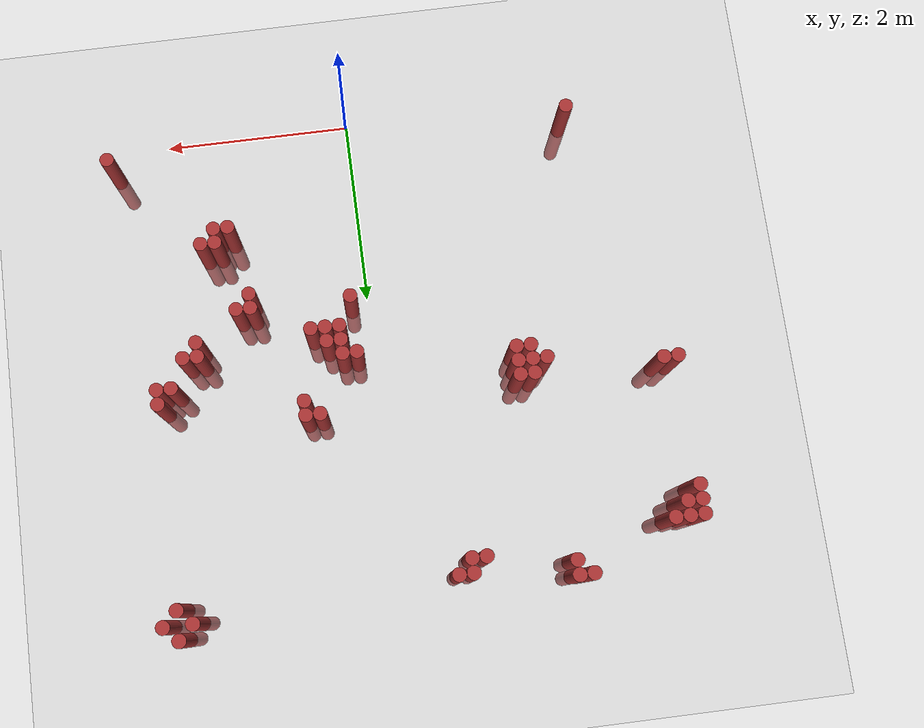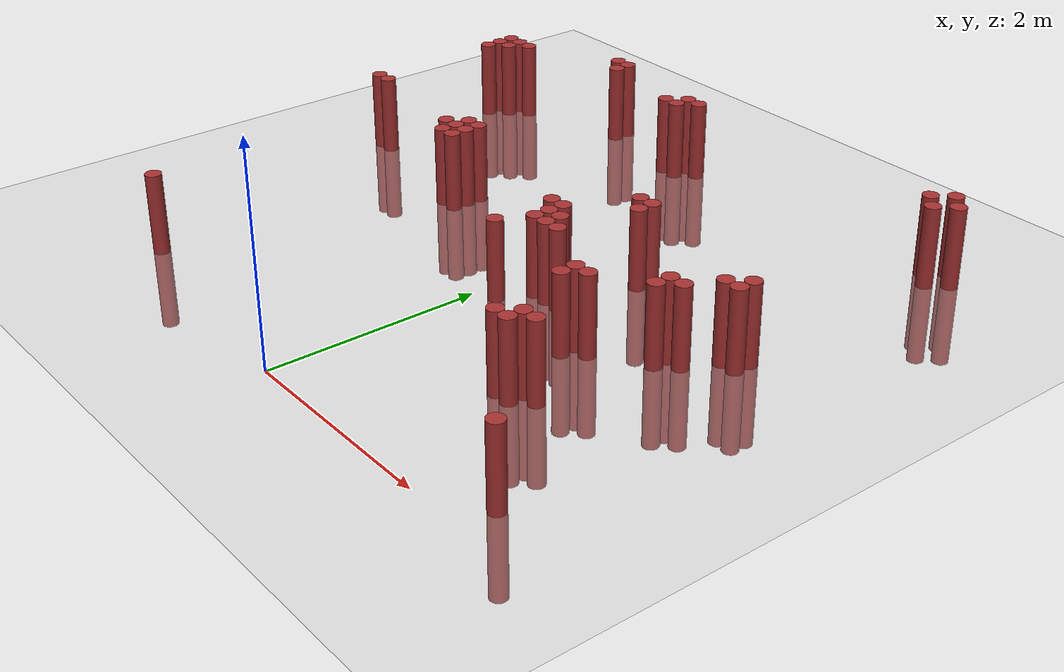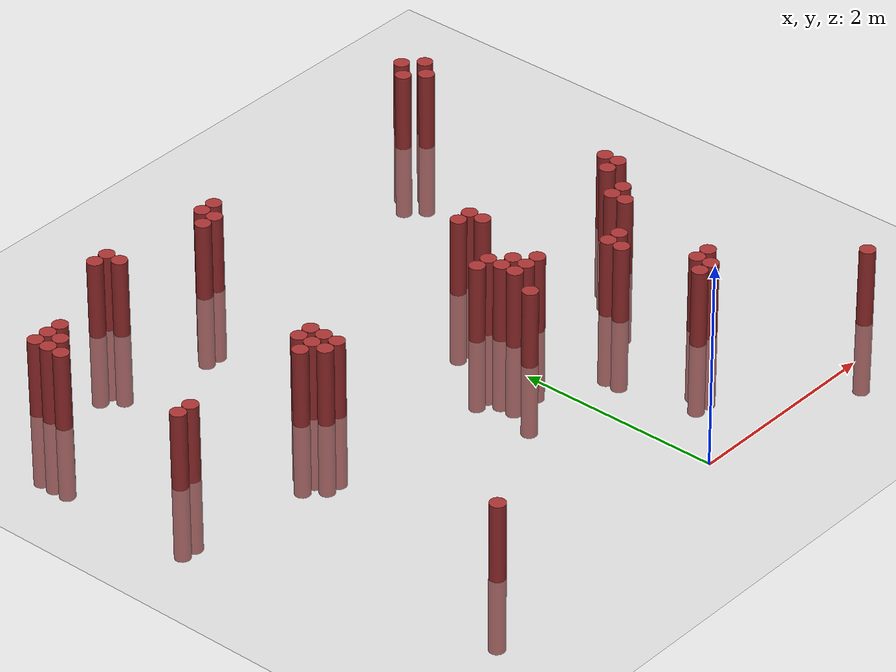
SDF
<sdf version="1.6">
 <world name="default">
  <model name="ground_plane">
   <static>1</static>
   <link name="link">
    <collision name="collision">
     <geometry><plane><normal>0 0 1</normal><size>100 100</size></plane></geometry>
     <surface><friction><ode><mu>100</mu><mu2>50</mu2></ode></friction></surface>
    </collision>
    <visual name="visual">
     <cast_shadows>0</cast_shadows>
     <geometry><plane><normal>0 0 1</normal><size>100 100</size></plane></geometry>
     <material>
      <script><uri>file://media/materials/scripts/gazebo.material</uri><name>Gazebo/Grey</name></script>
     </material>
    </visual>
   </link>
  </model>
  <model name="unit_cylinder_292">
   <static>1</static>
   <pose>-3.125000 3.175000 0.000000 0.000000 0.000000 0.000000</pose>
   <link name="link">
    <inertial>
     <mass>1</mass>
     <inertia><ixx>0.145833</ixx><ixy>0</ixy><ixz>0</ixz><iyy>0.145833</iyy><iyz>0</iyz><izz>0.125</izz></inertia>
    </inertial>
    <collision name="collision">
     <geometry><cylinder><radius>0.075000</radius><length>1.5</length></cylinder></geometry>
    </collision>
    <visual name="visual">
     <geometry><cylinder><radius>0.075000</radius><length>1.5</length></cylinder></geometry>
     <material>
      <ambient>0.648000 0.192000 0.192000 1</ambient>
      <diffuse>0.648000 0.192000 0.192000 1</diffuse>
     </material>
     <material>
      <script><name>Gazebo/Grey</name><uri>file://media/materials/scripts/gazebo.material</uri></script>
     </material>
    </visual>
   </link>
  </model>
  <model name="unit_cylinder_293">
   <static>1</static>
   <pose>-3.125000 4.525000 0.000000 0.000000 0.000000 0.000000</pose>
   <link name="link">
    <inertial>
     <mass>1</mass>
     <inertia><ixx>0.145833</ixx><ixy>0</ixy><ixz>0</ixz><iyy>0.145833</iyy><iyz>0</iyz><izz>0.125</izz></inertia>
    </inertial>
    <collision name="collision">
     <geometry><cylinder><radius>0.075000</radius><length>1.5</length></cylinder></geometry>
    </collision>
    <visual name="visual">
     <geometry><cylinder><radius>0.075000</radius><length>1.5</length></cylinder></geometry>
     <material>
      <ambient>0.648000 0.192000 0.192000 1</ambient>
      <diffuse>0.648000 0.192000 0.192000 1</diffuse>
     </material>
     <material>
      <script><name>Gazebo/Grey</name><uri>file://media/materials/scripts/gazebo.material</uri></script>
     </material>
    </visual>
   </link>
  </model>
  <model name="unit_cylinder_294">
   <static>1</static>
   <pose>-3.125000 4.675000 0.000000 0.000000 0.000000 0.000000</pose>
   <link name="link">
    <inertial>
     <mass>1</mass>
     <inertia><ixx>0.145833</ixx><ixy>0</ixy><ixz>0</ixz><iyy>0.145833</iyy><iyz>0</iyz><izz>0.125</izz></inertia>
    </inertial>
    <collision name="collision">
     <geometry><cylinder><radius>0.075000</radius><length>1.5</length></cylinder></geometry>
    </collision>
    <visual name="visual">
     <geometry><cylinder><radius>0.075000</radius><length>1.5</length></cylinder></geometry>
     <material>
      <ambient>0.648000 0.192000 0.192000 1</ambient>
      <diffuse>0.648000 0.192000 0.192000 1</diffuse>
     </material>
     <material>
      <script><name>Gazebo/Grey</name><uri>file://media/materials/scripts/gazebo.material</uri></script>
     </material>
    </visual>
   </link>
  </model>
  <model name="unit_cylinder_295">
   <static>1</static>
   <pose>-3.125000 4.825000 0.000000 0.000000 0.000000 0.000000</pose>
   <link name="link">
    <inertial>
     <mass>1</mass>
     <inertia><ixx>0.145833</ixx><ixy>0</ixy><ixz>0</ixz><iyy>0.145833</iyy><iyz>0</iyz><izz>0.125</izz></inertia>
    </inertial>
    <collision name="collision">
     <geometry><cylinder><radius>0.075000</radius><length>1.5</length></cylinder></geometry>
    </collision>
    <visual name="visual">
     <geometry><cylinder><radius>0.075000</radius><length>1.5</length></cylinder></geometry>
     <material>
      <ambient>0.648000 0.192000 0.192000 1</ambient>
      <diffuse>0.648000 0.192000 0.192000 1</diffuse>
     </material>
     <material>
      <script><name>Gazebo/Grey</name><uri>file://media/materials/scripts/gazebo.material</uri></script>
     </material>
    </visual>
   </link>
  </model>
  <model name="unit_cylinder_298">
   <static>1</static>
   <pose>-2.975000 3.175000 0.000000 0.000000 0.000000 0.000000</pose>
   <link name="link">
    <inertial>
     <mass>1</mass>
     <inertia><ixx>0.145833</ixx><ixy>0</ixy><ixz>0</ixz><iyy>0.145833</iyy><iyz>0</iyz><izz>0.125</izz></inertia>
    </inertial>
    <collision name="collision">
     <geometry><cylinder><radius>0.075000</radius><length>1.5</length></cylinder></geometry>
    </collision>
    <visual name="visual">
     <geometry><cylinder><radius>0.075000</radius><length>1.5</length></cylinder></geometry>
     <material>
      <ambient>0.648000 0.192000 0.192000 1</ambient>
      <diffuse>0.648000 0.192000 0.192000 1</diffuse>
     </material>
     <material>
      <script><name>Gazebo/Grey</name><uri>file://media/materials/scripts/gazebo.material</uri></script>
     </material>
    </visual>
   </link>
  </model>
  <model name="unit_cylinder_299">
   <static>1</static>
   <pose>-2.975000 4.675000 0.000000 0.000000 0.000000 0.000000</pose>
   <link name="link">
    <inertial>
     <mass>1</mass>
     <inertia><ixx>0.145833</ixx><ixy>0</ixy><ixz>0</ixz><iyy>0.145833</iyy><iyz>0</iyz><izz>0.125</izz></inertia>
    </inertial>
    <collision name="collision">
     <geometry><cylinder><radius>0.075000</radius><length>1.5</length></cylinder></geometry>
    </collision>
    <visual name="visual">
     <geometry><cylinder><radius>0.075000</radius><length>1.5</length></cylinder></geometry>
     <material>
      <ambient>0.648000 0.192000 0.192000 1</ambient>
      <diffuse>0.648000 0.192000 0.192000 1</diffuse>
     </material>
     <material>
      <script><name>Gazebo/Grey</name><uri>file://media/materials/scripts/gazebo.material</uri></script>
     </material>
    </visual>
   </link>
  </model>
  <model name="unit_cylinder_300">
   <static>1</static>
   <pose>-2.975000 4.825000 0.000000 0.000000 0.000000 0.000000</pose>
   <link name="link">
    <inertial>
     <mass>1</mass>
     <inertia><ixx>0.145833</ixx><ixy>0</ixy><ixz>0</ixz><iyy>0.145833</iyy><iyz>0</iyz><izz>0.125</izz></inertia>
    </inertial>
    <collision name="collision">
     <geometry><cylinder><radius>0.075000</radius><length>1.5</length></cylinder></geometry>
    </collision>
    <visual name="visual">
     <geometry><cylinder><radius>0.075000</radius><length>1.5</length></cylinder></geometry>
     <material>
      <ambient>0.648000 0.192000 0.192000 1</ambient>
      <diffuse>0.648000 0.192000 0.192000 1</diffuse>
     </material>
     <material>
      <script><name>Gazebo/Grey</name><uri>file://media/materials/scripts/gazebo.material</uri></script>
     </material>
    </visual>
   </link>
  </model>
  <model name="unit_cylinder_303">
   <static>1</static>
   <pose>-2.825000 4.825000 0.000000 0.000000 0.000000 0.000000</pose>
   <link name="link">
    <inertial>
     <mass>1</mass>
     <inertia><ixx>0.145833</ixx><ixy>0</ixy><ixz>0</ixz><iyy>0.145833</iyy><iyz>0</iyz><izz>0.125</izz></inertia>
    </inertial>
    <collision name="collision">
     <geometry><cylinder><radius>0.075000</radius><length>1.5</length></cylinder></geometry>
    </collision>
    <visual name="visual">
     <geometry><cylinder><radius>0.075000</radius><length>1.5</length></cylinder></geometry>
     <material>
      <ambient>0.648000 0.192000 0.192000 1</ambient>
      <diffuse>0.648000 0.192000 0.192000 1</diffuse>
     </material>
     <material>
      <script><name>Gazebo/Grey</name><uri>file://media/materials/scripts/gazebo.material</uri></script>
     </material>
    </visual>
   </link>
  </model>
  <model name="unit_cylinder_308">
   <static>1</static>
   <pose>-2.375000 0.325000 0.000000 0.000000 0.000000 0.000000</pose>
   <link name="link">
    <inertial>
     <mass>1</mass>
     <inertia><ixx>0.145833</ixx><ixy>0</ixy><ixz>0</ixz><iyy>0.145833</iyy><iyz>0</iyz><izz>0.125</izz></inertia>
    </inertial>
    <collision name="collision">
     <geometry><cylinder><radius>0.075000</radius><length>1.5</length></cylinder></geometry>
    </collision>
    <visual name="visual">
     <geometry><cylinder><radius>0.075000</radius><length>1.5</length></cylinder></geometry>
     <material>
      <ambient>0.648000 0.192000 0.192000 1</ambient>
      <diffuse>0.648000 0.192000 0.192000 1</diffuse>
     </material>
     <material>
      <script><name>Gazebo/Grey</name><uri>file://media/materials/scripts/gazebo.material</uri></script>
     </material>
    </visual>
   </link>
  </model>
  <model name="unit_cylinder_315">
   <static>1</static>
   <pose>-1.925000 5.275000 0.000000 0.000000 0.000000 0.000000</pose>
   <link name="link">
    <inertial>
     <mass>1</mass>
     <inertia><ixx>0.145833</ixx><ixy>0</ixy><ixz>0</ixz><iyy>0.145833</iyy><iyz>0</iyz><izz>0.125</izz></inertia>
    </inertial>
    <collision name="collision">
     <geometry><cylinder><radius>0.075000</radius><length>1.5</length></cylinder></geometry>
    </collision>
    <visual name="visual">
     <geometry><cylinder><radius>0.075000</radius><length>1.5</length></cylinder></geometry>
     <material>
      <ambient>0.648000 0.192000 0.192000 1</ambient>
      <diffuse>0.648000 0.192000 0.192000 1</diffuse>
     </material>
     <material>
      <script><name>Gazebo/Grey</name><uri>file://media/materials/scripts/gazebo.material</uri></script>
     </material>
    </visual>
   </link>
  </model>
  <model name="unit_cylinder_318">
   <static>1</static>
   <pose>-1.775000 3.025000 0.000000 0.000000 0.000000 0.000000</pose>
   <link name="link">
    <inertial>
     <mass>1</mass>
     <inertia><ixx>0.145833</ixx><ixy>0</ixy><ixz>0</ixz><iyy>0.145833</iyy><iyz>0</iyz><izz>0.125</izz></inertia>
    </inertial>
    <collision name="collision">
     <geometry><cylinder><radius>0.075000</radius><length>1.5</length></cylinder></geometry>
    </collision>
    <visual name="visual">
     <geometry><cylinder><radius>0.075000</radius><length>1.5</length></cylinder></geometry>
     <material>
      <ambient>0.648000 0.192000 0.192000 1</ambient>
      <diffuse>0.648000 0.192000 0.192000 1</diffuse>
     </material>
     <material>
      <script><name>Gazebo/Grey</name><uri>file://media/materials/scripts/gazebo.material</uri></script>
     </material>
    </visual>
   </link>
  </model>
  <model name="unit_cylinder_319">
   <static>1</static>
   <pose>-1.775000 5.125000 0.000000 0.000000 0.000000 0.000000</pose>
   <link name="link">
    <inertial>
     <mass>1</mass>
     <inertia><ixx>0.145833</ixx><ixy>0</ixy><ixz>0</ixz><iyy>0.145833</iyy><iyz>0</iyz><izz>0.125</izz></inertia>
    </inertial>
    <collision name="collision">
     <geometry><cylinder><radius>0.075000</radius><length>1.5</length></cylinder></geometry>
    </collision>
    <visual name="visual">
     <geometry><cylinder><radius>0.075000</radius><length>1.5</length></cylinder></geometry>
     <material>
      <ambient>0.648000 0.192000 0.192000 1</ambient>
      <diffuse>0.648000 0.192000 0.192000 1</diffuse>
     </material>
     <material>
      <script><name>Gazebo/Grey</name><uri>file://media/materials/scripts/gazebo.material</uri></script>
     </material>
    </visual>
   </link>
  </model>
  <model name="unit_cylinder_320">
   <static>1</static>
   <pose>-1.775000 5.275000 0.000000 0.000000 0.000000 0.000000</pose>
   <link name="link">
    <inertial>
     <mass>1</mass>
     <inertia><ixx>0.145833</ixx><ixy>0</ixy><ixz>0</ixz><iyy>0.145833</iyy><iyz>0</iyz><izz>0.125</izz></inertia>
    </inertial>
    <collision name="collision">
     <geometry><cylinder><radius>0.075000</radius><length>1.5</length></cylinder></geometry>
    </collision>
    <visual name="visual">
     <geometry><cylinder><radius>0.075000</radius><length>1.5</length></cylinder></geometry>
     <material>
      <ambient>0.648000 0.192000 0.192000 1</ambient>
      <diffuse>0.648000 0.192000 0.192000 1</diffuse>
     </material>
     <material>
      <script><name>Gazebo/Grey</name><uri>file://media/materials/scripts/gazebo.material</uri></script>
     </material>
    </visual>
   </link>
  </model>
  <model name="unit_cylinder_322">
   <static>1</static>
   <pose>-1.625000 2.875000 0.000000 0.000000 0.000000 0.000000</pose>
   <link name="link">
    <inertial>
     <mass>1</mass>
     <inertia><ixx>0.145833</ixx><ixy>0</ixy><ixz>0</ixz><iyy>0.145833</iyy><iyz>0</iyz><izz>0.125</izz></inertia>
    </inertial>
    <collision name="collision">
     <geometry><cylinder><radius>0.075000</radius><length>1.5</length></cylinder></geometry>
    </collision>
    <visual name="visual">
     <geometry><cylinder><radius>0.075000</radius><length>1.5</length></cylinder></geometry>
     <material>
      <ambient>0.648000 0.192000 0.192000 1</ambient>
      <diffuse>0.648000 0.192000 0.192000 1</diffuse>
     </material>
     <material>
      <script><name>Gazebo/Grey</name><uri>file://media/materials/scripts/gazebo.material</uri></script>
     </material>
    </visual>
   </link>
  </model>
  <model name="unit_cylinder_323">
   <static>1</static>
   <pose>-1.625000 3.025000 0.000000 0.000000 0.000000 0.000000</pose>
   <link name="link">
    <inertial>
     <mass>1</mass>
     <inertia><ixx>0.145833</ixx><ixy>0</ixy><ixz>0</ixz><iyy>0.145833</iyy><iyz>0</iyz><izz>0.125</izz></inertia>
    </inertial>
    <collision name="collision">
     <geometry><cylinder><radius>0.075000</radius><length>1.5</length></cylinder></geometry>
    </collision>
    <visual name="visual">
     <geometry><cylinder><radius>0.075000</radius><length>1.5</length></cylinder></geometry>
     <material>
      <ambient>0.648000 0.192000 0.192000 1</ambient>
      <diffuse>0.648000 0.192000 0.192000 1</diffuse>
     </material>
     <material>
      <script><name>Gazebo/Grey</name><uri>file://media/materials/scripts/gazebo.material</uri></script>
     </material>
    </visual>
   </link>
  </model>
  <model name="unit_cylinder_324">
   <static>1</static>
   <pose>-1.625000 3.175000 0.000000 0.000000 0.000000 0.000000</pose>
   <link name="link">
    <inertial>
     <mass>1</mass>
     <inertia><ixx>0.145833</ixx><ixy>0</ixy><ixz>0</ixz><iyy>0.145833</iyy><iyz>0</iyz><izz>0.125</izz></inertia>
    </inertial>
    <collision name="collision">
     <geometry><cylinder><radius>0.075000</radius><length>1.5</length></cylinder></geometry>
    </collision>
    <visual name="visual">
     <geometry><cylinder><radius>0.075000</radius><length>1.5</length></cylinder></geometry>
     <material>
      <ambient>0.648000 0.192000 0.192000 1</ambient>
      <diffuse>0.648000 0.192000 0.192000 1</diffuse>
     </material>
     <material>
      <script><name>Gazebo/Grey</name><uri>file://media/materials/scripts/gazebo.material</uri></script>
     </material>
    </visual>
   </link>
  </model>
  <model name="unit_cylinder_327">
   <static>1</static>
   <pose>-1.475000 2.875000 0.000000 0.000000 0.000000 0.000000</pose>
   <link name="link">
    <inertial>
     <mass>1</mass>
     <inertia><ixx>0.145833</ixx><ixy>0</ixy><ixz>0</ixz><iyy>0.145833</iyy><iyz>0</iyz><izz>0.125</izz></inertia>
    </inertial>
    <collision name="collision">
     <geometry><cylinder><radius>0.075000</radius><length>1.5</length></cylinder></geometry>
    </collision>
    <visual name="visual">
     <geometry><cylinder><radius>0.075000</radius><length>1.5</length></cylinder></geometry>
     <material>
      <ambient>0.648000 0.192000 0.192000 1</ambient>
      <diffuse>0.648000 0.192000 0.192000 1</diffuse>
     </material>
     <material>
      <script><name>Gazebo/Grey</name><uri>file://media/materials/scripts/gazebo.material</uri></script>
     </material>
    </visual>
   </link>
  </model>
  <model name="unit_cylinder_328">
   <static>1</static>
   <pose>-1.475000 3.025000 0.000000 0.000000 0.000000 0.000000</pose>
   <link name="link">
    <inertial>
     <mass>1</mass>
     <inertia><ixx>0.145833</ixx><ixy>0</ixy><ixz>0</ixz><iyy>0.145833</iyy><iyz>0</iyz><izz>0.125</izz></inertia>
    </inertial>
    <collision name="collision">
     <geometry><cylinder><radius>0.075000</radius><length>1.5</length></cylinder></geometry>
    </collision>
    <visual name="visual">
     <geometry><cylinder><radius>0.075000</radius><length>1.5</length></cylinder></geometry>
     <material>
      <ambient>0.648000 0.192000 0.192000 1</ambient>
      <diffuse>0.648000 0.192000 0.192000 1</diffuse>
     </material>
     <material>
      <script><name>Gazebo/Grey</name><uri>file://media/materials/scripts/gazebo.material</uri></script>
     </material>
    </visual>
   </link>
  </model>
  <model name="unit_cylinder_329">
   <static>1</static>
   <pose>-1.475000 3.175000 0.000000 0.000000 0.000000 0.000000</pose>
   <link name="link">
    <inertial>
     <mass>1</mass>
     <inertia><ixx>0.145833</ixx><ixy>0</ixy><ixz>0</ixz><iyy>0.145833</iyy><iyz>0</iyz><izz>0.125</izz></inertia>
    </inertial>
    <collision name="collision">
     <geometry><cylinder><radius>0.075000</radius><length>1.5</length></cylinder></geometry>
    </collision>
    <visual name="visual">
     <geometry><cylinder><radius>0.075000</radius><length>1.5</length></cylinder></geometry>
     <material>
      <ambient>0.648000 0.192000 0.192000 1</ambient>
      <diffuse>0.648000 0.192000 0.192000 1</diffuse>
     </material>
     <material>
      <script><name>Gazebo/Grey</name><uri>file://media/materials/scripts/gazebo.material</uri></script>
     </material>
    </visual>
   </link>
  </model>
  <model name="unit_cylinder_334">
   <static>1</static>
   <pose>-0.875000 4.975000 0.000000 0.000000 0.000000 0.000000</pose>
   <link name="link">
    <inertial>
     <mass>1</mass>
     <inertia><ixx>0.145833</ixx><ixy>0</ixy><ixz>0</ixz><iyy>0.145833</iyy><iyz>0</iyz><izz>0.125</izz></inertia>
    </inertial>
    <collision name="collision">
     <geometry><cylinder><radius>0.075000</radius><length>1.5</length></cylinder></geometry>
    </collision>
    <visual name="visual">
     <geometry><cylinder><radius>0.075000</radius><length>1.5</length></cylinder></geometry>
     <material>
      <ambient>0.648000 0.192000 0.192000 1</ambient>
      <diffuse>0.648000 0.192000 0.192000 1</diffuse>
     </material>
     <material>
      <script><name>Gazebo/Grey</name><uri>file://media/materials/scripts/gazebo.material</uri></script>
     </material>
    </visual>
   </link>
  </model>
  <model name="unit_cylinder_335">
   <static>1</static>
   <pose>-0.725000 4.975000 0.000000 0.000000 0.000000 0.000000</pose>
   <link name="link">
    <inertial>
     <mass>1</mass>
     <inertia><ixx>0.145833</ixx><ixy>0</ixy><ixz>0</ixz><iyy>0.145833</iyy><iyz>0</iyz><izz>0.125</izz></inertia>
    </inertial>
    <collision name="collision">
     <geometry><cylinder><radius>0.075000</radius><length>1.5</length></cylinder></geometry>
    </collision>
    <visual name="visual">
     <geometry><cylinder><radius>0.075000</radius><length>1.5</length></cylinder></geometry>
     <material>
      <ambient>0.648000 0.192000 0.192000 1</ambient>
      <diffuse>0.648000 0.192000 0.192000 1</diffuse>
     </material>
     <material>
      <script><name>Gazebo/Grey</name><uri>file://media/materials/scripts/gazebo.material</uri></script>
     </material>
    </visual>
   </link>
  </model>
  <model name="unit_cylinder_336">
   <static>1</static>
   <pose>-0.725000 5.125000 0.000000 0.000000 0.000000 0.000000</pose>
   <link name="link">
    <inertial>
     <mass>1</mass>
     <inertia><ixx>0.145833</ixx><ixy>0</ixy><ixz>0</ixz><iyy>0.145833</iyy><iyz>0</iyz><izz>0.125</izz></inertia>
    </inertial>
    <collision name="collision">
     <geometry><cylinder><radius>0.075000</radius><length>1.5</length></cylinder></geometry>
    </collision>
    <visual name="visual">
     <geometry><cylinder><radius>0.075000</radius><length>1.5</length></cylinder></geometry>
     <material>
      <ambient>0.648000 0.192000 0.192000 1</ambient>
      <diffuse>0.648000 0.192000 0.192000 1</diffuse>
     </material>
     <material>
      <script><name>Gazebo/Grey</name><uri>file://media/materials/scripts/gazebo.material</uri></script>
     </material>
    </visual>
   </link>
  </model>
  <model name="unit_cylinder_337">
   <static>1</static>
   <pose>-0.575000 5.125000 0.000000 0.000000 0.000000 0.000000</pose>
   <link name="link">
    <inertial>
     <mass>1</mass>
     <inertia><ixx>0.145833</ixx><ixy>0</ixy><ixz>0</ixz><iyy>0.145833</iyy><iyz>0</iyz><izz>0.125</izz></inertia>
    </inertial>
    <collision name="collision">
     <geometry><cylinder><radius>0.075000</radius><length>1.5</length></cylinder></geometry>
    </collision>
    <visual name="visual">
     <geometry><cylinder><radius>0.075000</radius><length>1.5</length></cylinder></geometry>
     <material>
      <ambient>0.648000 0.192000 0.192000 1</ambient>
      <diffuse>0.648000 0.192000 0.192000 1</diffuse>
     </material>
     <material>
      <script><name>Gazebo/Grey</name><uri>file://media/materials/scripts/gazebo.material</uri></script>
     </material>
    </visual>
   </link>
  </model>
  <model name="unit_cylinder_344">
   <static>1</static>
   <pose>0.175000 2.125000 0.000000 0.000000 0.000000 0.000000</pose>
   <link name="link">
    <inertial>
     <mass>1</mass>
     <inertia><ixx>0.145833</ixx><ixy>0</ixy><ixz>0</ixz><iyy>0.145833</iyy><iyz>0</iyz><izz>0.125</izz></inertia>
    </inertial>
    <collision name="collision">
     <geometry><cylinder><radius>0.075000</radius><length>1.5</length></cylinder></geometry>
    </collision>
    <visual name="visual">
     <geometry><cylinder><radius>0.075000</radius><length>1.5</length></cylinder></geometry>
     <material>
      <ambient>0.648000 0.192000 0.192000 1</ambient>
      <diffuse>0.648000 0.192000 0.192000 1</diffuse>
     </material>
     <material>
      <script><name>Gazebo/Grey</name><uri>file://media/materials/scripts/gazebo.material</uri></script>
     </material>
    </visual>
   </link>
  </model>
  <model name="unit_cylinder_345">
   <static>1</static>
   <pose>0.175000 2.725000 0.000000 0.000000 0.000000 0.000000</pose>
   <link name="link">
    <inertial>
     <mass>1</mass>
     <inertia><ixx>0.145833</ixx><ixy>0</ixy><ixz>0</ixz><iyy>0.145833</iyy><iyz>0</iyz><izz>0.125</izz></inertia>
    </inertial>
    <collision name="collision">
     <geometry><cylinder><radius>0.075000</radius><length>1.5</length></cylinder></geometry>
    </collision>
    <visual name="visual">
     <geometry><cylinder><radius>0.075000</radius><length>1.5</length></cylinder></geometry>
     <material>
      <ambient>0.648000 0.192000 0.192000 1</ambient>
      <diffuse>0.648000 0.192000 0.192000 1</diffuse>
     </material>
     <material>
      <script><name>Gazebo/Grey</name><uri>file://media/materials/scripts/gazebo.material</uri></script>
     </material>
    </visual>
   </link>
  </model>
  <model name="unit_cylinder_346">
   <static>1</static>
   <pose>0.325000 2.425000 0.000000 0.000000 0.000000 0.000000</pose>
   <link name="link">
    <inertial>
     <mass>1</mass>
     <inertia><ixx>0.145833</ixx><ixy>0</ixy><ixz>0</ixz><iyy>0.145833</iyy><iyz>0</iyz><izz>0.125</izz></inertia>
    </inertial>
    <collision name="collision">
     <geometry><cylinder><radius>0.075000</radius><length>1.5</length></cylinder></geometry>
    </collision>
    <visual name="visual">
     <geometry><cylinder><radius>0.075000</radius><length>1.5</length></cylinder></geometry>
     <material>
      <ambient>0.648000 0.192000 0.192000 1</ambient>
      <diffuse>0.648000 0.192000 0.192000 1</diffuse>
     </material>
     <material>
      <script><name>Gazebo/Grey</name><uri>file://media/materials/scripts/gazebo.material</uri></script>
     </material>
    </visual>
   </link>
  </model>
  <model name="unit_cylinder_347">
   <static>1</static>
   <pose>0.325000 2.575000 0.000000 0.000000 0.000000 0.000000</pose>
   <link name="link">
    <inertial>
     <mass>1</mass>
     <inertia><ixx>0.145833</ixx><ixy>0</ixy><ixz>0</ixz><iyy>0.145833</iyy><iyz>0</iyz><izz>0.125</izz></inertia>
    </inertial>
    <collision name="collision">
     <geometry><cylinder><radius>0.075000</radius><length>1.5</length></cylinder></geometry>
    </collision>
    <visual name="visual">
     <geometry><cylinder><radius>0.075000</radius><length>1.5</length></cylinder></geometry>
     <material>
      <ambient>0.648000 0.192000 0.192000 1</ambient>
      <diffuse>0.648000 0.192000 0.192000 1</diffuse>
     </material>
     <material>
      <script><name>Gazebo/Grey</name><uri>file://media/materials/scripts/gazebo.material</uri></script>
     </material>
    </visual>
   </link>
  </model>
  <model name="unit_cylinder_348">
   <static>1</static>
   <pose>0.325000 2.725000 0.000000 0.000000 0.000000 0.000000</pose>
   <link name="link">
    <inertial>
     <mass>1</mass>
     <inertia><ixx>0.145833</ixx><ixy>0</ixy><ixz>0</ixz><iyy>0.145833</iyy><iyz>0</iyz><izz>0.125</izz></inertia>
    </inertial>
    <collision name="collision">
     <geometry><cylinder><radius>0.075000</radius><length>1.5</length></cylinder></geometry>
    </collision>
    <visual name="visual">
     <geometry><cylinder><radius>0.075000</radius><length>1.5</length></cylinder></geometry>
     <material>
      <ambient>0.648000 0.192000 0.192000 1</ambient>
      <diffuse>0.648000 0.192000 0.192000 1</diffuse>
     </material>
     <material>
      <script><name>Gazebo/Grey</name><uri>file://media/materials/scripts/gazebo.material</uri></script>
     </material>
    </visual>
   </link>
  </model>
  <model name="unit_cylinder_349">
   <static>1</static>
   <pose>0.475000 2.425000 0.000000 0.000000 0.000000 0.000000</pose>
   <link name="link">
    <inertial>
     <mass>1</mass>
     <inertia><ixx>0.145833</ixx><ixy>0</ixy><ixz>0</ixz><iyy>0.145833</iyy><iyz>0</iyz><izz>0.125</izz></inertia>
    </inertial>
    <collision name="collision">
     <geometry><cylinder><radius>0.075000</radius><length>1.5</length></cylinder></geometry>
    </collision>
    <visual name="visual">
     <geometry><cylinder><radius>0.075000</radius><length>1.5</length></cylinder></geometry>
     <material>
      <ambient>0.648000 0.192000 0.192000 1</ambient>
      <diffuse>0.648000 0.192000 0.192000 1</diffuse>
     </material>
     <material>
      <script><name>Gazebo/Grey</name><uri>file://media/materials/scripts/gazebo.material</uri></script>
     </material>
    </visual>
   </link>
  </model>
  <model name="unit_cylinder_350">
   <static>1</static>
   <pose>0.475000 2.575000 0.000000 0.000000 0.000000 0.000000</pose>
   <link name="link">
    <inertial>
     <mass>1</mass>
     <inertia><ixx>0.145833</ixx><ixy>0</ixy><ixz>0</ixz><iyy>0.145833</iyy><iyz>0</iyz><izz>0.125</izz></inertia>
    </inertial>
    <collision name="collision">
     <geometry><cylinder><radius>0.075000</radius><length>1.5</length></cylinder></geometry>
    </collision>
    <visual name="visual">
     <geometry><cylinder><radius>0.075000</radius><length>1.5</length></cylinder></geometry>
     <material>
      <ambient>0.648000 0.192000 0.192000 1</ambient>
      <diffuse>0.648000 0.192000 0.192000 1</diffuse>
     </material>
     <material>
      <script><name>Gazebo/Grey</name><uri>file://media/materials/scripts/gazebo.material</uri></script>
     </material>
    </visual>
   </link>
  </model>
  <model name="unit_cylinder_351">
   <static>1</static>
   <pose>0.625000 2.425000 0.000000 0.000000 0.000000 0.000000</pose>
   <link name="link">
    <inertial>
     <mass>1</mass>
     <inertia><ixx>0.145833</ixx><ixy>0</ixy><ixz>0</ixz><iyy>0.145833</iyy><iyz>0</iyz><izz>0.125</izz></inertia>
    </inertial>
    <collision name="collision">
     <geometry><cylinder><radius>0.075000</radius><length>1.5</length></cylinder></geometry>
    </collision>
    <visual name="visual">
     <geometry><cylinder><radius>0.075000</radius><length>1.5</length></cylinder></geometry>
     <material>
      <ambient>0.648000 0.192000 0.192000 1</ambient>
      <diffuse>0.648000 0.192000 0.192000 1</diffuse>
     </material>
     <material>
      <script><name>Gazebo/Grey</name><uri>file://media/materials/scripts/gazebo.material</uri></script>
     </material>
    </visual>
   </link>
  </model>
  <model name="unit_cylinder_352">
   <static>1</static>
   <pose>0.625000 3.325000 0.000000 0.000000 0.000000 0.000000</pose>
   <link name="link">
    <inertial>
     <mass>1</mass>
     <inertia><ixx>0.145833</ixx><ixy>0</ixy><ixz>0</ixz><iyy>0.145833</iyy><iyz>0</iyz><izz>0.125</izz></inertia>
    </inertial>
    <collision name="collision">
     <geometry><cylinder><radius>0.075000</radius><length>1.5</length></cylinder></geometry>
    </collision>
    <visual name="visual">
     <geometry><cylinder><radius>0.075000</radius><length>1.5</length></cylinder></geometry>
     <material>
      <ambient>0.648000 0.192000 0.192000 1</ambient>
      <diffuse>0.648000 0.192000 0.192000 1</diffuse>
     </material>
     <material>
      <script><name>Gazebo/Grey</name><uri>file://media/materials/scripts/gazebo.material</uri></script>
     </material>
    </visual>
   </link>
  </model>
  <model name="unit_cylinder_353">
   <static>1</static>
   <pose>0.775000 3.175000 0.000000 0.000000 0.000000 0.000000</pose>
   <link name="link">
    <inertial>
     <mass>1</mass>
     <inertia><ixx>0.145833</ixx><ixy>0</ixy><ixz>0</ixz><iyy>0.145833</iyy><iyz>0</iyz><izz>0.125</izz></inertia>
    </inertial>
    <collision name="collision">
     <geometry><cylinder><radius>0.075000</radius><length>1.5</length></cylinder></geometry>
    </collision>
    <visual name="visual">
     <geometry><cylinder><radius>0.075000</radius><length>1.5</length></cylinder></geometry>
     <material>
      <ambient>0.648000 0.192000 0.192000 1</ambient>
      <diffuse>0.648000 0.192000 0.192000 1</diffuse>
     </material>
     <material>
      <script><name>Gazebo/Grey</name><uri>file://media/materials/scripts/gazebo.material</uri></script>
     </material>
    </visual>
   </link>
  </model>
  <model name="unit_cylinder_354">
   <static>1</static>
   <pose>0.775000 3.325000 0.000000 0.000000 0.000000 0.000000</pose>
   <link name="link">
    <inertial>
     <mass>1</mass>
     <inertia><ixx>0.145833</ixx><ixy>0</ixy><ixz>0</ixz><iyy>0.145833</iyy><iyz>0</iyz><izz>0.125</izz></inertia>
    </inertial>
    <collision name="collision">
     <geometry><cylinder><radius>0.075000</radius><length>1.5</length></cylinder></geometry>
    </collision>
    <visual name="visual">
     <geometry><cylinder><radius>0.075000</radius><length>1.5</length></cylinder></geometry>
     <material>
      <ambient>0.648000 0.192000 0.192000 1</ambient>
      <diffuse>0.648000 0.192000 0.192000 1</diffuse>
     </material>
     <material>
      <script><name>Gazebo/Grey</name><uri>file://media/materials/scripts/gazebo.material</uri></script>
     </material>
    </visual>
   </link>
  </model>
  <model name="unit_cylinder_355">
   <static>1</static>
   <pose>1.225000 1.975000 0.000000 0.000000 0.000000 0.000000</pose>
   <link name="link">
    <inertial>
     <mass>1</mass>
     <inertia><ixx>0.145833</ixx><ixy>0</ixy><ixz>0</ixz><iyy>0.145833</iyy><iyz>0</iyz><izz>0.125</izz></inertia>
    </inertial>
    <collision name="collision">
     <geometry><cylinder><radius>0.075000</radius><length>1.5</length></cylinder></geometry>
    </collision>
    <visual name="visual">
     <geometry><cylinder><radius>0.075000</radius><length>1.5</length></cylinder></geometry>
     <material>
      <ambient>0.648000 0.192000 0.192000 1</ambient>
      <diffuse>0.648000 0.192000 0.192000 1</diffuse>
     </material>
     <material>
      <script><name>Gazebo/Grey</name><uri>file://media/materials/scripts/gazebo.material</uri></script>
     </material>
    </visual>
   </link>
  </model>
  <model name="unit_cylinder_356">
   <static>1</static>
   <pose>1.225000 2.125000 0.000000 0.000000 0.000000 0.000000</pose>
   <link name="link">
    <inertial>
     <mass>1</mass>
     <inertia><ixx>0.145833</ixx><ixy>0</ixy><ixz>0</ixz><iyy>0.145833</iyy><iyz>0</iyz><izz>0.125</izz></inertia>
    </inertial>
    <collision name="collision">
     <geometry><cylinder><radius>0.075000</radius><length>1.5</length></cylinder></geometry>
    </collision>
    <visual name="visual">
     <geometry><cylinder><radius>0.075000</radius><length>1.5</length></cylinder></geometry>
     <material>
      <ambient>0.648000 0.192000 0.192000 1</ambient>
      <diffuse>0.648000 0.192000 0.192000 1</diffuse>
     </material>
     <material>
      <script><name>Gazebo/Grey</name><uri>file://media/materials/scripts/gazebo.material</uri></script>
     </material>
    </visual>
   </link>
  </model>
  <model name="unit_cylinder_357">
   <static>1</static>
   <pose>1.375000 1.225000 0.000000 0.000000 0.000000 0.000000</pose>
   <link name="link">
    <inertial>
     <mass>1</mass>
     <inertia><ixx>0.145833</ixx><ixy>0</ixy><ixz>0</ixz><iyy>0.145833</iyy><iyz>0</iyz><izz>0.125</izz></inertia>
    </inertial>
    <collision name="collision">
     <geometry><cylinder><radius>0.075000</radius><length>1.5</length></cylinder></geometry>
    </collision>
    <visual name="visual">
     <geometry><cylinder><radius>0.075000</radius><length>1.5</length></cylinder></geometry>
     <material>
      <ambient>0.648000 0.192000 0.192000 1</ambient>
      <diffuse>0.648000 0.192000 0.192000 1</diffuse>
     </material>
     <material>
      <script><name>Gazebo/Grey</name><uri>file://media/materials/scripts/gazebo.material</uri></script>
     </material>
    </visual>
   </link>
  </model>
  <model name="unit_cylinder_358">
   <static>1</static>
   <pose>1.375000 2.125000 0.000000 0.000000 0.000000 0.000000</pose>
   <link name="link">
    <inertial>
     <mass>1</mass>
     <inertia><ixx>0.145833</ixx><ixy>0</ixy><ixz>0</ixz><iyy>0.145833</iyy><iyz>0</iyz><izz>0.125</izz></inertia>
    </inertial>
    <collision name="collision">
     <geometry><cylinder><radius>0.075000</radius><length>1.5</length></cylinder></geometry>
    </collision>
    <visual name="visual">
     <geometry><cylinder><radius>0.075000</radius><length>1.5</length></cylinder></geometry>
     <material>
      <ambient>0.648000 0.192000 0.192000 1</ambient>
      <diffuse>0.648000 0.192000 0.192000 1</diffuse>
     </material>
     <material>
      <script><name>Gazebo/Grey</name><uri>file://media/materials/scripts/gazebo.material</uri></script>
     </material>
    </visual>
   </link>
  </model>
  <model name="unit_cylinder_359">
   <static>1</static>
   <pose>1.525000 1.225000 0.000000 0.000000 0.000000 0.000000</pose>
   <link name="link">
    <inertial>
     <mass>1</mass>
     <inertia><ixx>0.145833</ixx><ixy>0</ixy><ixz>0</ixz><iyy>0.145833</iyy><iyz>0</iyz><izz>0.125</izz></inertia>
    </inertial>
    <collision name="collision">
     <geometry><cylinder><radius>0.075000</radius><length>1.5</length></cylinder></geometry>
    </collision>
    <visual name="visual">
     <geometry><cylinder><radius>0.075000</radius><length>1.5</length></cylinder></geometry>
     <material>
      <ambient>0.648000 0.192000 0.192000 1</ambient>
      <diffuse>0.648000 0.192000 0.192000 1</diffuse>
     </material>
     <material>
      <script><name>Gazebo/Grey</name><uri>file://media/materials/scripts/gazebo.material</uri></script>
     </material>
    </visual>
   </link>
  </model>
  <model name="unit_cylinder_360">
   <static>1</static>
   <pose>1.525000 1.375000 0.000000 0.000000 0.000000 0.000000</pose>
   <link name="link">
    <inertial>
     <mass>1</mass>
     <inertia><ixx>0.145833</ixx><ixy>0</ixy><ixz>0</ixz><iyy>0.145833</iyy><iyz>0</iyz><izz>0.125</izz></inertia>
    </inertial>
    <collision name="collision">
     <geometry><cylinder><radius>0.075000</radius><length>1.5</length></cylinder></geometry>
    </collision>
    <visual name="visual">
     <geometry><cylinder><radius>0.075000</radius><length>1.5</length></cylinder></geometry>
     <material>
      <ambient>0.648000 0.192000 0.192000 1</ambient>
      <diffuse>0.648000 0.192000 0.192000 1</diffuse>
     </material>
     <material>
      <script><name>Gazebo/Grey</name><uri>file://media/materials/scripts/gazebo.material</uri></script>
     </material>
    </visual>
   </link>
  </model>
  <model name="unit_cylinder_361">
   <static>1</static>
   <pose>1.675000 1.375000 0.000000 0.000000 0.000000 0.000000</pose>
   <link name="link">
    <inertial>
     <mass>1</mass>
     <inertia><ixx>0.145833</ixx><ixy>0</ixy><ixz>0</ixz><iyy>0.145833</iyy><iyz>0</iyz><izz>0.125</izz></inertia>
    </inertial>
    <collision name="collision">
     <geometry><cylinder><radius>0.075000</radius><length>1.5</length></cylinder></geometry>
    </collision>
    <visual name="visual">
     <geometry><cylinder><radius>0.075000</radius><length>1.5</length></cylinder></geometry>
     <material>
      <ambient>0.648000 0.192000 0.192000 1</ambient>
      <diffuse>0.648000 0.192000 0.192000 1</diffuse>
     </material>
     <material>
      <script><name>Gazebo/Grey</name><uri>file://media/materials/scripts/gazebo.material</uri></script>
     </material>
    </visual>
   </link>
  </model>
  <model name="unit_cylinder_362">
   <static>1</static>
   <pose>1.825000 2.425000 0.000000 0.000000 0.000000 0.000000</pose>
   <link name="link">
    <inertial>
     <mass>1</mass>
     <inertia><ixx>0.145833</ixx><ixy>0</ixy><ixz>0</ixz><iyy>0.145833</iyy><iyz>0</iyz><izz>0.125</izz></inertia>
    </inertial>
    <collision name="collision">
     <geometry><cylinder><radius>0.075000</radius><length>1.5</length></cylinder></geometry>
    </collision>
    <visual name="visual">
     <geometry><cylinder><radius>0.075000</radius><length>1.5</length></cylinder></geometry>
     <material>
      <ambient>0.648000 0.192000 0.192000 1</ambient>
      <diffuse>0.648000 0.192000 0.192000 1</diffuse>
     </material>
     <material>
      <script><name>Gazebo/Grey</name><uri>file://media/materials/scripts/gazebo.material</uri></script>
     </material>
    </visual>
   </link>
  </model>
  <model name="unit_cylinder_363">
   <static>1</static>
   <pose>1.825000 2.575000 0.000000 0.000000 0.000000 0.000000</pose>
   <link name="link">
    <inertial>
     <mass>1</mass>
     <inertia><ixx>0.145833</ixx><ixy>0</ixy><ixz>0</ixz><iyy>0.145833</iyy><iyz>0</iyz><izz>0.125</izz></inertia>
    </inertial>
    <collision name="collision">
     <geometry><cylinder><radius>0.075000</radius><length>1.5</length></cylinder></geometry>
    </collision>
    <visual name="visual">
     <geometry><cylinder><radius>0.075000</radius><length>1.5</length></cylinder></geometry>
     <material>
      <ambient>0.648000 0.192000 0.192000 1</ambient>
      <diffuse>0.648000 0.192000 0.192000 1</diffuse>
     </material>
     <material>
      <script><name>Gazebo/Grey</name><uri>file://media/materials/scripts/gazebo.material</uri></script>
     </material>
    </visual>
   </link>
  </model>
  <model name="unit_cylinder_367">
   <static>1</static>
   <pose>1.975000 2.575000 0.000000 0.000000 0.000000 0.000000</pose>
   <link name="link">
    <inertial>
     <mass>1</mass>
     <inertia><ixx>0.145833</ixx><ixy>0</ixy><ixz>0</ixz><iyy>0.145833</iyy><iyz>0</iyz><izz>0.125</izz></inertia>
    </inertial>
    <collision name="collision">
     <geometry><cylinder><radius>0.075000</radius><length>1.5</length></cylinder></geometry>
    </collision>
    <visual name="visual">
     <geometry><cylinder><radius>0.075000</radius><length>1.5</length></cylinder></geometry>
     <material>
      <ambient>0.648000 0.192000 0.192000 1</ambient>
      <diffuse>0.648000 0.192000 0.192000 1</diffuse>
     </material>
     <material>
      <script><name>Gazebo/Grey</name><uri>file://media/materials/scripts/gazebo.material</uri></script>
     </material>
    </visual>
   </link>
  </model>
  <model name="unit_cylinder_369">
   <static>1</static>
   <pose>2.125000 2.875000 0.000000 0.000000 0.000000 0.000000</pose>
   <link name="link">
    <inertial>
     <mass>1</mass>
     <inertia><ixx>0.145833</ixx><ixy>0</ixy><ixz>0</ixz><iyy>0.145833</iyy><iyz>0</iyz><izz>0.125</izz></inertia>
    </inertial>
    <collision name="collision">
     <geometry><cylinder><radius>0.075000</radius><length>1.5</length></cylinder></geometry>
    </collision>
    <visual name="visual">
     <geometry><cylinder><radius>0.075000</radius><length>1.5</length></cylinder></geometry>
     <material>
      <ambient>0.648000 0.192000 0.192000 1</ambient>
      <diffuse>0.648000 0.192000 0.192000 1</diffuse>
     </material>
     <material>
      <script><name>Gazebo/Grey</name><uri>file://media/materials/scripts/gazebo.material</uri></script>
     </material>
    </visual>
   </link>
  </model>
  <model name="unit_cylinder_370">
   <static>1</static>
   <pose>2.125000 5.275000 0.000000 0.000000 0.000000 0.000000</pose>
   <link name="link">
    <inertial>
     <mass>1</mass>
     <inertia><ixx>0.145833</ixx><ixy>0</ixy><ixz>0</ixz><iyy>0.145833</iyy><iyz>0</iyz><izz>0.125</izz></inertia>
    </inertial>
    <collision name="collision">
     <geometry><cylinder><radius>0.075000</radius><length>1.5</length></cylinder></geometry>
    </collision>
    <visual name="visual">
     <geometry><cylinder><radius>0.075000</radius><length>1.5</length></cylinder></geometry>
     <material>
      <ambient>0.648000 0.192000 0.192000 1</ambient>
      <diffuse>0.648000 0.192000 0.192000 1</diffuse>
     </material>
     <material>
      <script><name>Gazebo/Grey</name><uri>file://media/materials/scripts/gazebo.material</uri></script>
     </material>
    </visual>
   </link>
  </model>
  <model name="unit_cylinder_371">
   <static>1</static>
   <pose>2.275000 2.875000 0.000000 0.000000 0.000000 0.000000</pose>
   <link name="link">
    <inertial>
     <mass>1</mass>
     <inertia><ixx>0.145833</ixx><ixy>0</ixy><ixz>0</ixz><iyy>0.145833</iyy><iyz>0</iyz><izz>0.125</izz></inertia>
    </inertial>
    <collision name="collision">
     <geometry><cylinder><radius>0.075000</radius><length>1.5</length></cylinder></geometry>
    </collision>
    <visual name="visual">
     <geometry><cylinder><radius>0.075000</radius><length>1.5</length></cylinder></geometry>
     <material>
      <ambient>0.648000 0.192000 0.192000 1</ambient>
      <diffuse>0.648000 0.192000 0.192000 1</diffuse>
     </material>
     <material>
      <script><name>Gazebo/Grey</name><uri>file://media/materials/scripts/gazebo.material</uri></script>
     </material>
    </visual>
   </link>
  </model>
  <model name="unit_cylinder_372">
   <static>1</static>
   <pose>2.275000 3.025000 0.000000 0.000000 0.000000 0.000000</pose>
   <link name="link">
    <inertial>
     <mass>1</mass>
     <inertia><ixx>0.145833</ixx><ixy>0</ixy><ixz>0</ixz><iyy>0.145833</iyy><iyz>0</iyz><izz>0.125</izz></inertia>
    </inertial>
    <collision name="collision">
     <geometry><cylinder><radius>0.075000</radius><length>1.5</length></cylinder></geometry>
    </collision>
    <visual name="visual">
     <geometry><cylinder><radius>0.075000</radius><length>1.5</length></cylinder></geometry>
     <material>
      <ambient>0.648000 0.192000 0.192000 1</ambient>
      <diffuse>0.648000 0.192000 0.192000 1</diffuse>
     </material>
     <material>
      <script><name>Gazebo/Grey</name><uri>file://media/materials/scripts/gazebo.material</uri></script>
     </material>
    </visual>
   </link>
  </model>
  <model name="unit_cylinder_373">
   <static>1</static>
   <pose>2.275000 5.125000 0.000000 0.000000 0.000000 0.000000</pose>
   <link name="link">
    <inertial>
     <mass>1</mass>
     <inertia><ixx>0.145833</ixx><ixy>0</ixy><ixz>0</ixz><iyy>0.145833</iyy><iyz>0</iyz><izz>0.125</izz></inertia>
    </inertial>
    <collision name="collision">
     <geometry><cylinder><radius>0.075000</radius><length>1.5</length></cylinder></geometry>
    </collision>
    <visual name="visual">
     <geometry><cylinder><radius>0.075000</radius><length>1.5</length></cylinder></geometry>
     <material>
      <ambient>0.648000 0.192000 0.192000 1</ambient>
      <diffuse>0.648000 0.192000 0.192000 1</diffuse>
     </material>
     <material>
      <script><name>Gazebo/Grey</name><uri>file://media/materials/scripts/gazebo.material</uri></script>
     </material>
    </visual>
   </link>
  </model>
  <model name="unit_cylinder_374">
   <static>1</static>
   <pose>2.275000 5.425000 0.000000 0.000000 0.000000 0.000000</pose>
   <link name="link">
    <inertial>
     <mass>1</mass>
     <inertia><ixx>0.145833</ixx><ixy>0</ixy><ixz>0</ixz><iyy>0.145833</iyy><iyz>0</iyz><izz>0.125</izz></inertia>
    </inertial>
    <collision name="collision">
     <geometry><cylinder><radius>0.075000</radius><length>1.5</length></cylinder></geometry>
    </collision>
    <visual name="visual">
     <geometry><cylinder><radius>0.075000</radius><length>1.5</length></cylinder></geometry>
     <material>
      <ambient>0.648000 0.192000 0.192000 1</ambient>
      <diffuse>0.648000 0.192000 0.192000 1</diffuse>
     </material>
     <material>
      <script><name>Gazebo/Grey</name><uri>file://media/materials/scripts/gazebo.material</uri></script>
     </material>
    </visual>
   </link>
  </model>
  <model name="unit_cylinder_375">
   <static>1</static>
   <pose>2.425000 5.275000 0.000000 0.000000 0.000000 0.000000</pose>
   <link name="link">
    <inertial>
     <mass>1</mass>
     <inertia><ixx>0.145833</ixx><ixy>0</ixy><ixz>0</ixz><iyy>0.145833</iyy><iyz>0</iyz><izz>0.125</izz></inertia>
    </inertial>
    <collision name="collision">
     <geometry><cylinder><radius>0.075000</radius><length>1.5</length></cylinder></geometry>
    </collision>
    <visual name="visual">
     <geometry><cylinder><radius>0.075000</radius><length>1.5</length></cylinder></geometry>
     <material>
      <ambient>0.648000 0.192000 0.192000 1</ambient>
      <diffuse>0.648000 0.192000 0.192000 1</diffuse>
     </material>
     <material>
      <script><name>Gazebo/Grey</name><uri>file://media/materials/scripts/gazebo.material</uri></script>
     </material>
    </visual>
   </link>
  </model>
  <model name="unit_cylinder_376">
   <static>1</static>
   <pose>2.575000 0.325000 0.000000 0.000000 0.000000 0.000000</pose>
   <link name="link">
    <inertial>
     <mass>1</mass>
     <inertia><ixx>0.145833</ixx><ixy>0</ixy><ixz>0</ixz><iyy>0.145833</iyy><iyz>0</iyz><izz>0.125</izz></inertia>
    </inertial>
    <collision name="collision">
     <geometry><cylinder><radius>0.075000</radius><length>1.5</length></cylinder></geometry>
    </collision>
    <visual name="visual">
     <geometry><cylinder><radius>0.075000</radius><length>1.5</length></cylinder></geometry>
     <material>
      <ambient>0.648000 0.192000 0.192000 1</ambient>
      <diffuse>0.648000 0.192000 0.192000 1</diffuse>
     </material>
     <material>
      <script><name>Gazebo/Grey</name><uri>file://media/materials/scripts/gazebo.material</uri></script>
     </material>
    </visual>
   </link>
  </model>
 </world>
</sdf>
